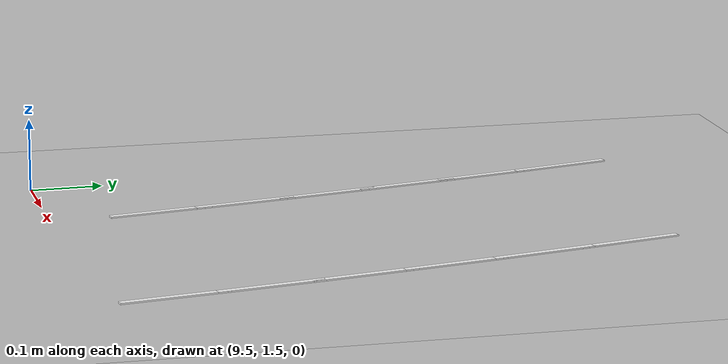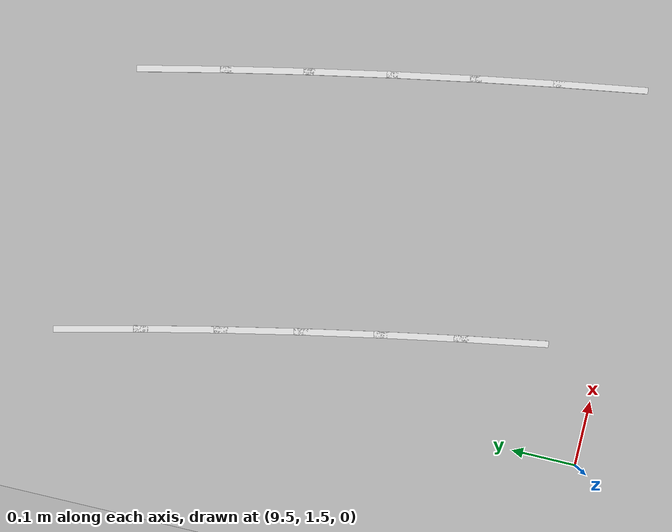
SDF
<sdf version="1.7">
 <world name="default">
  <model name="ground_plane">
   <static>1</static>
   <link name="link">
    <collision name="collision">
     <geometry><plane><normal>0 0 1</normal><size>100 100</size></plane></geometry>
     <surface>
      <contact><collide_bitmask>65535</collide_bitmask></contact>
      <friction><ode><mu>100</mu><mu2>50</mu2></ode></friction>
     </surface>
    </collision>
    <visual name="visual">
     <cast_shadows>0</cast_shadows>
     <geometry><plane><normal>0 0 1</normal><size>100 100</size></plane></geometry>
     <material>
      <script><uri>file://media/materials/scripts/gazebo.material</uri><name>Gazebo/Grey</name></script>
     </material>
    </visual>
   </link>
  </model>
  <model name="lane_line_right_12">
   <static>1</static>
   <link name="link">
    <pose>0 0 -0.004 0 -0 0</pose>
    <visual name="visual">
     <geometry><box><size>0.1457 0.01 0.01</size></box></geometry>
     <material><ambient>1 1 1 1</ambient><diffuse>1 1 1 1</diffuse></material>
    </visual>
    <collision name="collision"><geometry><box><size>0.1457 0.01 0.01</size></box></geometry></collision>
   </link>
   <pose>10.0742 1.5956 0 0 -0 1.72788</pose>
  </model>
  <model name="lane_line_left_13">
   <static>1</static>
   <link name="link">
    <pose>0 0 -0.004 0 -0 0</pose>
    <visual name="visual">
     <geometry><box><size>0.1457 0.01 0.01</size></box></geometry>
     <material><ambient>1 1 1 1</ambient><diffuse>1 1 1 1</diffuse></material>
    </visual>
    <collision name="collision"><geometry><box><size>0.1457 0.01 0.01</size></box></geometry></collision>
   </link>
   <pose>9.65912 1.65453 0 0 -0 1.74044</pose>
  </model>
  <model name="lane_line_right_13">
   <static>1</static>
   <link name="link">
    <pose>0 0 -0.004 0 -0 0</pose>
    <visual name="visual">
     <geometry><box><size>0.1457 0.01 0.01</size></box></geometry>
     <material><ambient>1 1 1 1</ambient><diffuse>1 1 1 1</diffuse></material>
    </visual>
    <collision name="collision"><geometry><box><size>0.1457 0.01 0.01</size></box></geometry></collision>
   </link>
   <pose>10.0534 1.72207 0 0 -0 1.74044</pose>
  </model>
  <model name="lane_line_left_14">
   <static>1</static>
   <link name="link">
    <pose>0 0 -0.004 0 -0 0</pose>
    <visual name="visual">
     <geometry><box><size>0.1457 0.01 0.01</size></box></geometry>
     <material><ambient>1 1 1 1</ambient><diffuse>1 1 1 1</diffuse></material>
    </visual>
    <collision name="collision"><geometry><box><size>0.1457 0.01 0.01</size></box></geometry></collision>
   </link>
   <pose>9.63757 1.77578 0 0 -0 1.75301</pose>
  </model>
  <model name="lane_line_right_14">
   <static>1</static>
   <link name="link">
    <pose>0 0 -0.004 0 -0 0</pose>
    <visual name="visual">
     <geometry><box><size>0.1457 0.01 0.01</size></box></geometry>
     <material><ambient>1 1 1 1</ambient><diffuse>1 1 1 1</diffuse></material>
    </visual>
    <collision name="collision"><geometry><box><size>0.1457 0.01 0.01</size></box></geometry></collision>
   </link>
   <pose>10.0309 1.84826 0 0 -0 1.75301</pose>
  </model>
  <model name="lane_line_left_15">
   <static>1</static>
   <link name="link">
    <pose>0 0 -0.004 0 -0 0</pose>
    <visual name="visual">
     <geometry><box><size>0.1457 0.01 0.01</size></box></geometry>
     <material><ambient>1 1 1 1</ambient><diffuse>1 1 1 1</diffuse></material>
    </visual>
    <collision name="collision"><geometry><box><size>0.1457 0.01 0.01</size></box></geometry></collision>
   </link>
   <pose>9.61449 1.89675 0 0 -0 1.76558</pose>
  </model>
  <model name="lane_line_right_15">
   <static>1</static>
   <link name="link">
    <pose>0 0 -0.004 0 -0 0</pose>
    <visual name="visual">
     <geometry><box><size>0.1457 0.01 0.01</size></box></geometry>
     <material><ambient>1 1 1 1</ambient><diffuse>1 1 1 1</diffuse></material>
    </visual>
    <collision name="collision"><geometry><box><size>0.1457 0.01 0.01</size></box></geometry></collision>
   </link>
   <pose>10.0069 1.97417 0 0 -0 1.76558</pose>
  </model>
  <model name="lane_line_left_16">
   <static>1</static>
   <link name="link">
    <pose>0 0 -0.004 0 -0 0</pose>
    <visual name="visual">
     <geometry><box><size>0.1457 0.01 0.01</size></box></geometry>
     <material><ambient>1 1 1 1</ambient><diffuse>1 1 1 1</diffuse></material>
    </visual>
    <collision name="collision"><geometry><box><size>0.1457 0.01 0.01</size></box></geometry></collision>
   </link>
   <pose>9.5899 2.01741 0 0 -0 1.77814</pose>
  </model>
  <model name="lane_line_right_16">
   <static>1</static>
   <link name="link">
    <pose>0 0 -0.004 0 -0 0</pose>
    <visual name="visual">
     <geometry><box><size>0.1457 0.01 0.01</size></box></geometry>
     <material><ambient>1 1 1 1</ambient><diffuse>1 1 1 1</diffuse></material>
    </visual>
    <collision name="collision"><geometry><box><size>0.1457 0.01 0.01</size></box></geometry></collision>
   </link>
   <pose>9.98133 2.09976 0 0 -0 1.77814</pose>
  </model>
  <model name="lane_line_left_17">
   <static>1</static>
   <link name="link">
    <pose>0 0 -0.004 0 -0 0</pose>
    <visual name="visual">
     <geometry><box><size>0.1457 0.01 0.01</size></box></geometry>
     <material><ambient>1 1 1 1</ambient><diffuse>1 1 1 1</diffuse></material>
    </visual>
    <collision name="collision"><geometry><box><size>0.1457 0.01 0.01</size></box></geometry></collision>
   </link>
   <pose>9.56379 2.13776 0 0 -0 1.79071</pose>
  </model>
  <model name="lane_line_right_17">
   <static>1</static>
   <link name="link">
    <pose>0 0 -0.004 0 -0 0</pose>
    <visual name="visual">
     <geometry><box><size>0.1457 0.01 0.01</size></box></geometry>
     <material><ambient>1 1 1 1</ambient><diffuse>1 1 1 1</diffuse></material>
    </visual>
    <collision name="collision"><geometry><box><size>0.1457 0.01 0.01</size></box></geometry></collision>
   </link>
   <pose>9.95416 2.22502 0 0 -0 1.79071</pose>
  </model>
  <model name="lane_line_left_18">
   <static>1</static>
   <link name="link">
    <pose>0 0 -0.004 0 -0 0</pose>
    <visual name="visual">
     <geometry><box><size>0.1457 0.01 0.01</size></box></geometry>
     <material><ambient>1 1 1 1</ambient><diffuse>1 1 1 1</diffuse></material>
    </visual>
    <collision name="collision"><geometry><box><size>0.1457 0.01 0.01</size></box></geometry></collision>
   </link>
   <pose>9.53617 2.25777 0 0 -0 1.80327</pose>
  </model>
 </world>
</sdf>
